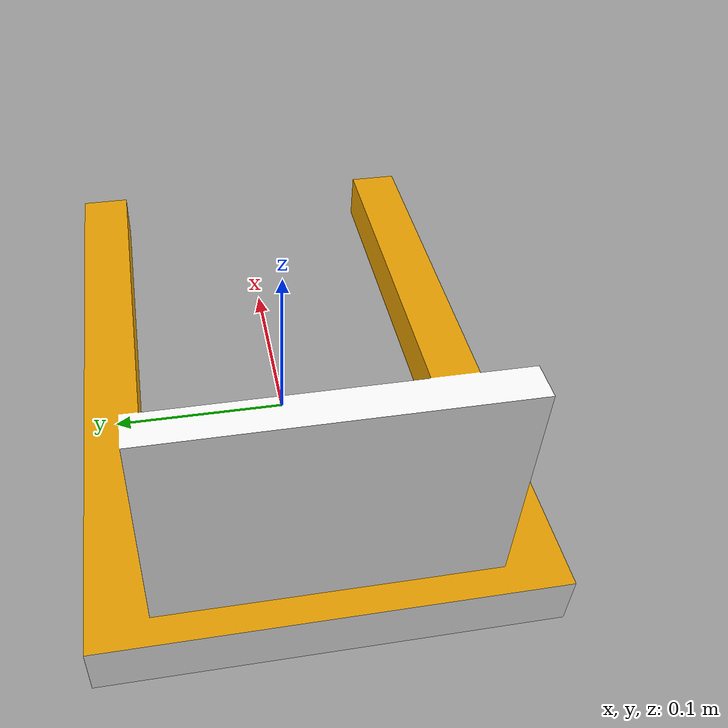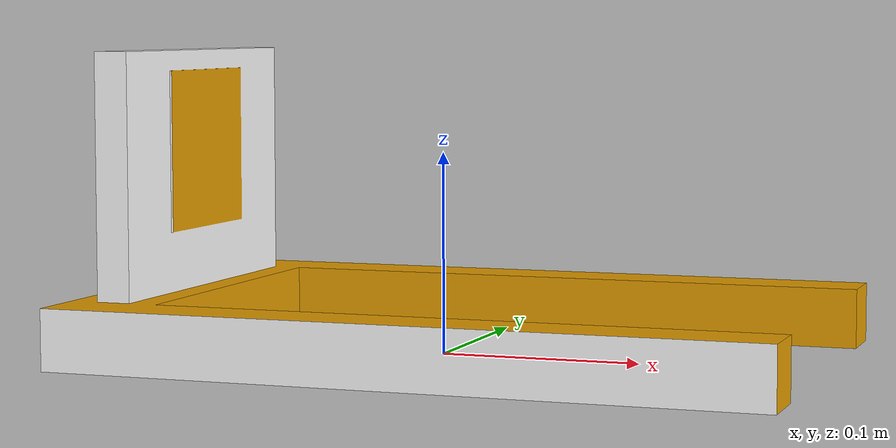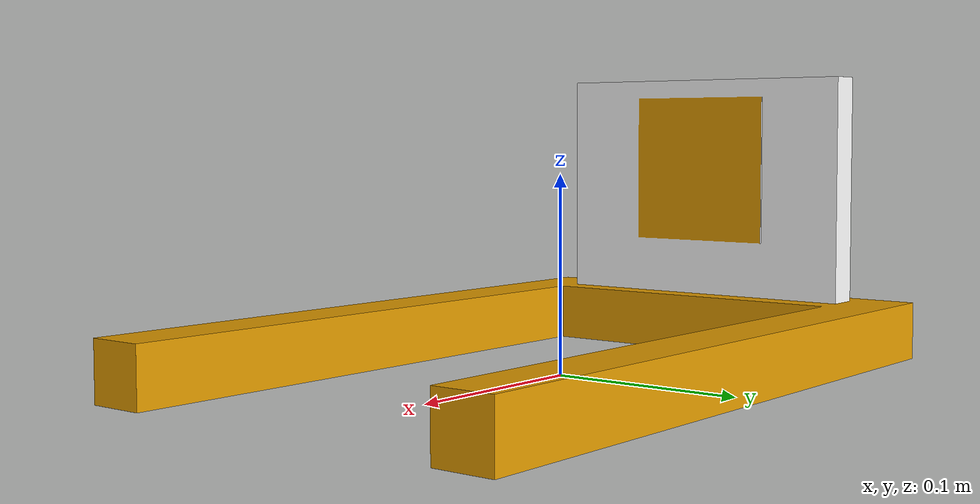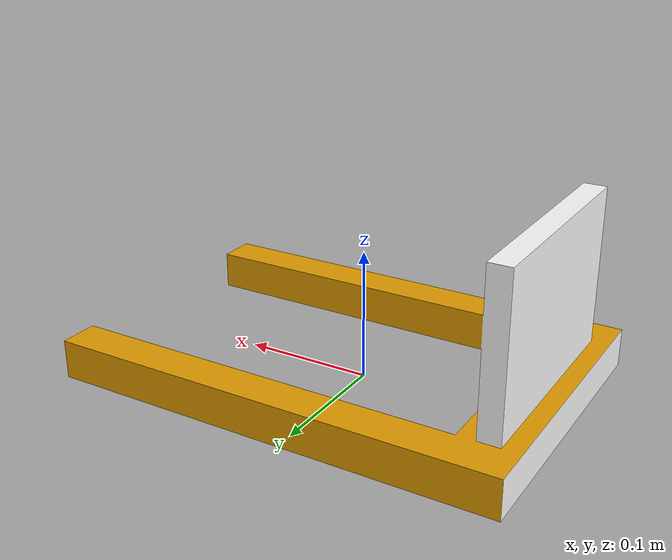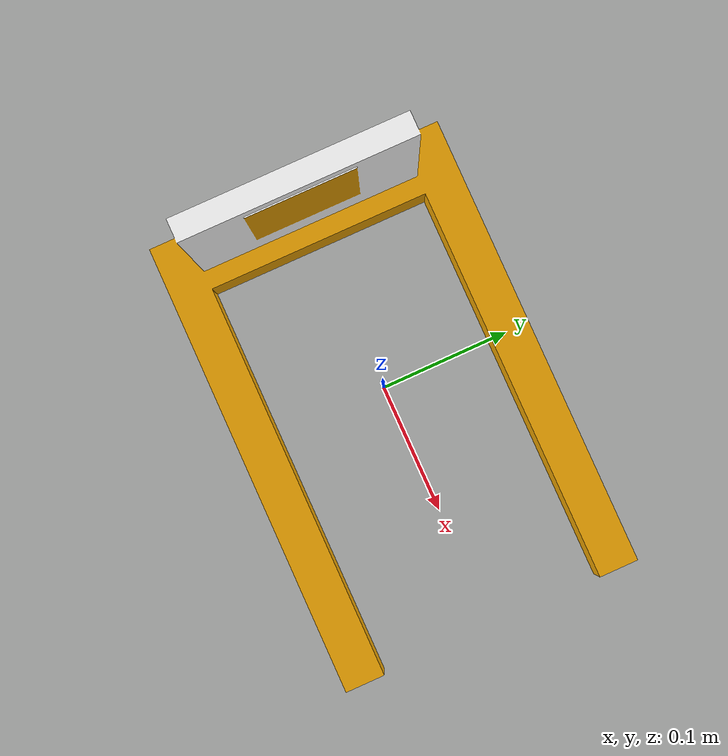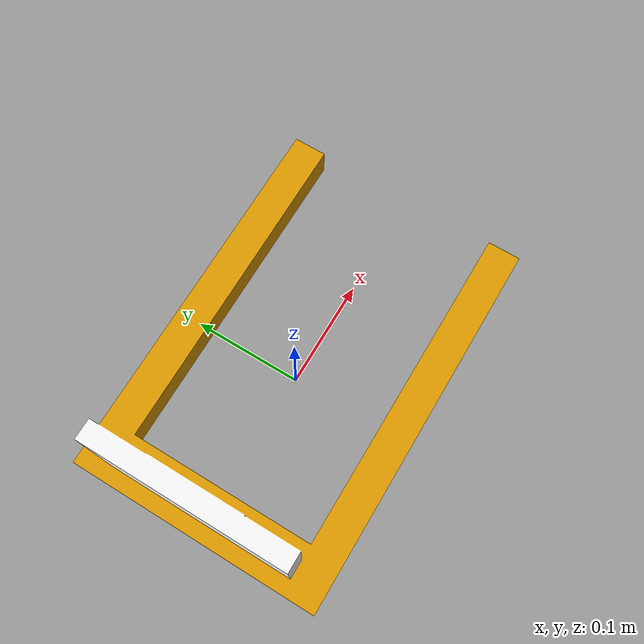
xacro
<?xml version="1.0" ?>
<robot name="dock_gate_green_circle" xmlns:xacro="http://www.ros.org/wiki/xacro">
  <!--                            BOAT HULL                                  -->
  <link name="boat_hull">
    <visual name="visual">
      <geometry>
        <mesh filename="file://$(find gazebo_simulation)/urdf/collada/dock_gate_green_circle.dae" />
      </geometry>
    </visual>

    <inertial>
       <mass value="0.5" />
       <inertia
         ixx="0.0000020778656"
         ixy="-0.000000089099184"
         ixz="0.0000000000189384648"
         iyy="0.00000824124569"
         iyz="0.0000000000531947773"
         izz="0.0000070840279"
       />
    </inertial>

    <buoyancy>
      <compensation>1.05</compensation>
      <origin xyz="0 0 0.0"/>
      <limit radius="0.015"/>
      <damping xyz="60 100 100"/>
    </buoyancy>
  </link>

  <gazebo>
    <static>false</static>
  </gazebo>

</robot>
